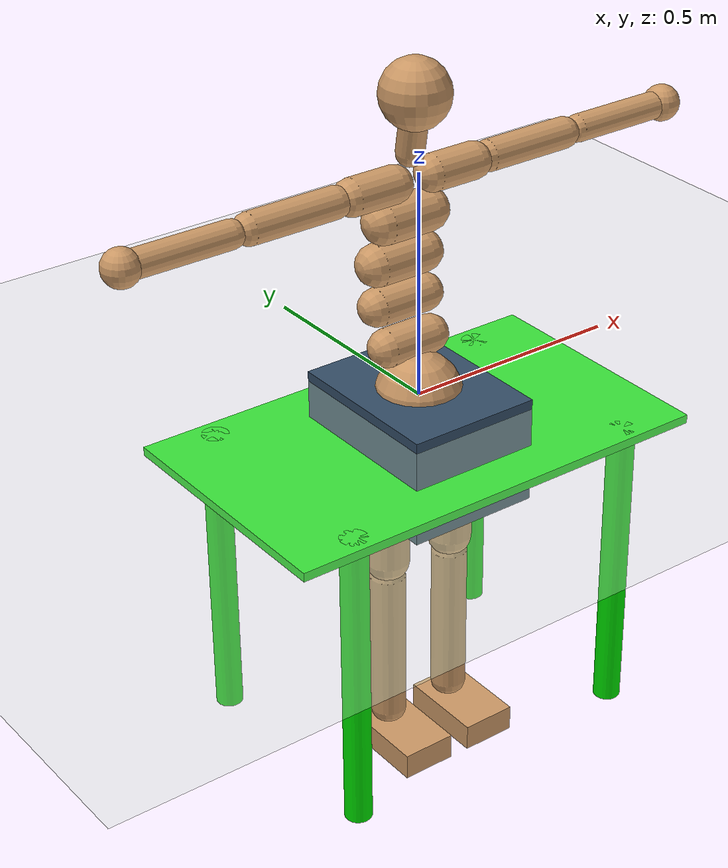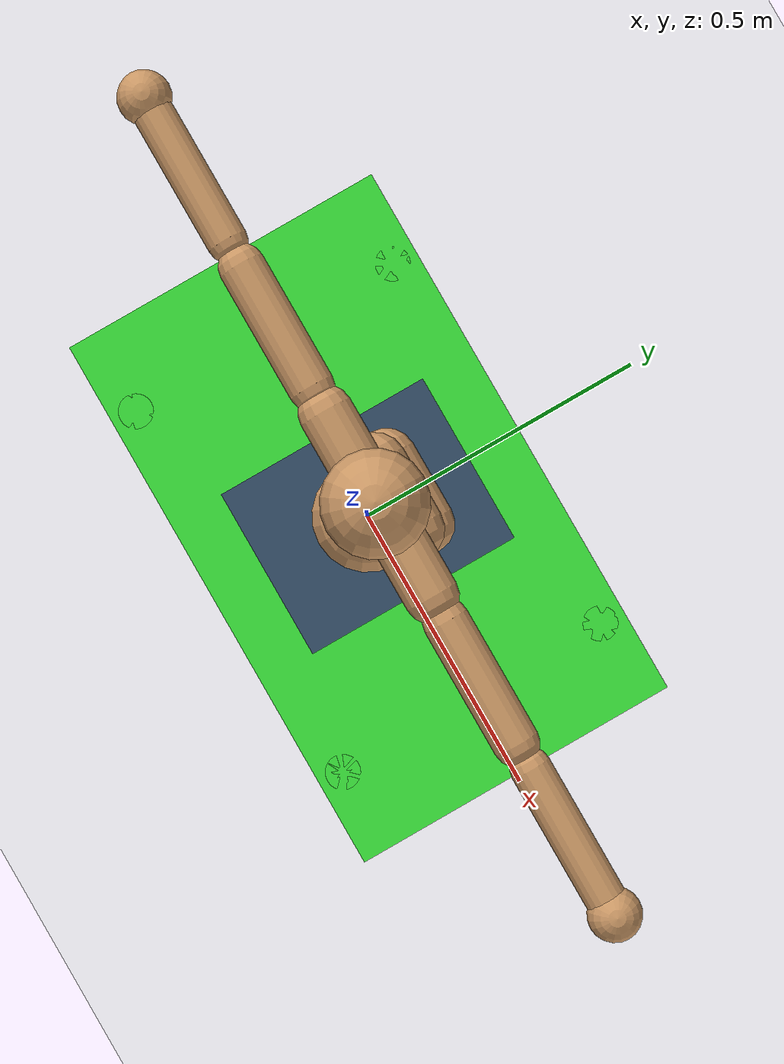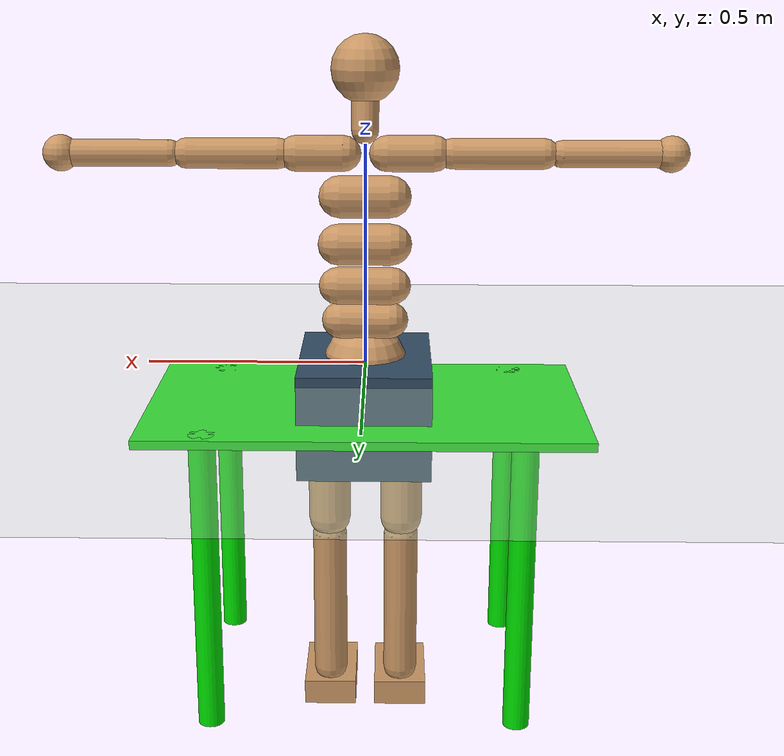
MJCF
<mujoco model="humanoid">
  <compiler angle="degree" inertiafromgeom="true" coordinate="global"/>
  <include file="./common/materials.xml"/>
  <visual>
    <headlight ambient=".4 .4 .4" diffuse=".8 .8 .8" specular="0.1 0.1 0.1"/>
    <map znear=".01"/>
    <quality shadowsize="2048"/>
  </visual>
  <default>
    <joint damping="0.0" armature="0.01" stiffness="0.0" limited="true"/>
    <geom conaffinity="7" condim="1" contype="7" margin="0.001" material="self" rgba="0.8 0.6 .4 1"/>
  </default>
  <statistic extent="3" center="0 0 1"/>
  <option timestep="0.00222222222"/>
  <asset>
    <texture type="skybox" file="./common/sky1.png" gridsize="3 4" gridlayout=".U..LFRB.D.." width="8192" height="8192"/>
    <texture builtin="flat" height="1278" mark="cross" markrgb="1 1 1" name="texgeom" random="0.01" rgb1=".8 .6 .4" rgb2=".8 .6 .4" type="cube" width="127"/>
  </asset>
  <worldbody>
    <light cutoff="100" diffuse="1 1 1" dir="-0 0 -1.3" directional="true" exponent="1" pos="0 0 1.3" specular=".1 .1 .1"/>
    <geom condim="3" friction="1. .1 .1" material="grid" name="floor" pos="0 0 0" rgba=".8 .9 .8 1" size="100 100 .2" type="plane"/>
    <body name="box" pos="0 0 0">
      <joint limited="false" name="box" type="free"/>
      <geom contype="3" conaffinity="3" type="box" size="0.15 0.19 0.120" pos="0 0 -0.1" euler="0 0 0" rgba="0.2 0.3 0.4 1" condim="3" mass="1.0"/>
    </body>
    <body name="table" pos="0 0 0">
      <joint limited="false" name="table" type="free"/>
      <geom contype="3" conaffinity="3" type="box" size="0.499 0.294 0.01" pos="0.0 0.0 -0.1" euler="0 0 0" rgba="0 0.9 0 1"    condim="3" mass="1.0"/>
      <geom contype="3" conaffinity="3" type="cylinder" size="0.03 0.35" pos="-0.35 -0.25 -0.44" euler="0 0 0" rgba="0 0.9 0 1" condim="3" mass="500.0"/>
      <geom contype="3" conaffinity="3" type="cylinder" size="0.03 0.35" pos="-0.35  0.25 -0.44" euler="0 0 0" rgba="0 0.9 0 1" condim="3" mass="500.0"/>
      <geom contype="3" conaffinity="3" type="cylinder" size="0.03 0.35" pos=" 0.35 -0.25 -0.44" euler="0 0 0" rgba="0 0.9 0 1" condim="3" mass="500.0"/>
      <geom contype="3" conaffinity="3" type="cylinder" size="0.03 0.35" pos=" 0.35  0.25 -0.44" euler="0 0 0" rgba="0 0.9 0 1" condim="3" mass="500.0"/>
    </body>
    <body name="Hips" user="0.0000 0.0146 0.0054" pos="0.0000 0.0146 0.0054">
      <joint armature="0" damping="0" limited="false" name="Hips" pos="0.0000 0.0000 0.0000" stiffness="0" type="free"/>
      <geom pos="0.0000 0.0000 0.0000" size="0.0950" type="sphere"/>
      <body name="Spine" user="0.0000 0.0591 0.1523" pos="0.0000 0.0146 0.0054">
        <geom fromto="-0.0550 0.0369 0.1109 0.0550 0.0369 0.1109" size="0.0420" type="capsule"/>
        <joint axis="1.0000 0.0000 0.0000" name="Spine_x" pos="0.0000 0.0439 0.0658" range="-30.0000 45.0000" type="hinge"/>
        <joint axis="0.0000 1.0000 0.0000" name="Spine_y" pos="0.0000 0.0439 0.0658" range="-30.0000 30.0000" type="hinge"/>
        <joint axis="0.0000 0.0000 1.0000" name="Spine_z" pos="0.0000 0.0439 0.0658" range="-30.0000 30.0000" type="hinge"/>
        <body name="Spine1" user="0.0000 0.0668 0.2397" pos="0.0000 0.0591 0.1523">
          <geom fromto="-0.0600 0.0630 0.1960 0.0600 0.0630 0.1960" size="0.0420" type="capsule"/>
          <joint axis="1.0000 0.0000 0.0000" name="Spine1_x" pos="0.0000 0.0591 0.1523" range="-30.0000 45.0000" type="hinge"/>
          <joint axis="0.0000 1.0000 0.0000" name="Spine1_y" pos="0.0000 0.0591 0.1523" range="-30.0000 30.0000" type="hinge"/>
          <joint axis="0.0000 0.0000 1.0000" name="Spine1_z" pos="0.0000 0.0591 0.1523" range="-30.0000 30.0000" type="hinge"/>
          <body name="Spine2" user="0.0000 0.0668 0.3275" pos="0.0000 0.0668 0.2397">
            <geom fromto="-0.0575 0.0668 0.2896 0.0575 0.0668 0.2896" size="0.0460" type="capsule"/>
            <joint axis="1.0000 0.0000 0.0000" name="Spine2_x" pos="0.0000 0.0668 0.2397" range="-30.0000 45.0000" type="hinge"/>
            <joint axis="0.0000 1.0000 0.0000" name="Spine2_y" pos="0.0000 0.0668 0.2397" range="-30.0000 30.0000" type="hinge"/>
            <joint axis="0.0000 0.0000 1.0000" name="Spine2_z" pos="0.0000 0.0668 0.2397" range="-30.0000 30.0000" type="hinge"/>
            <body name="Spine3" user="0.0000 0.0240 0.5074" pos="0.0000 0.0668 0.3275">
              <geom fromto="-0.0550 0.0454 0.3914 0.0550 0.0454 0.3914" size="0.0470" type="capsule"/>
              <joint axis="1.0000 0.0000 0.0000" name="Spine3_x" pos="0.0000 0.0668 0.3275" range="-30.0000 45.0000" type="hinge"/>
              <joint axis="0.0000 1.0000 0.0000" name="Spine3_y" pos="0.0000 0.0668 0.3275" range="-30.0000 30.0000" type="hinge"/>
              <joint axis="0.0000 0.0000 1.0000" name="Spine3_z" pos="0.0000 0.0668 0.3275" range="-30.0000 30.0000" type="hinge"/>
              <body name="Neck" user="0.0000 0.0129 0.6768" pos="0.0000 0.0240 0.5074">
                <joint axis="1.0000 0.0000 0.0000" name="Neck_x" pos="0.0000 0.0339 0.5579" range="-30.0000 45.0000" type="hinge"/>
                <joint axis="0.0000 1.0000 0.0000" name="Neck_y" pos="0.0000 0.0339 0.5579" range="-30.0000 30.0000" type="hinge"/>
                <joint axis="0.0000 0.0000 1.0000" name="Neck_z" pos="0.0000 0.0339 0.5579" range="-30.0000 30.0000" type="hinge"/>
                <geom fromto="0.0000 0.0304 0.5336 0.0000 0.0164 0.6131" size="0.0300" type="capsule"/>
                <body name="Head" user="0.0000 0.0129 0.8188" pos="0.0000 0.0129 0.6768">
                  <geom pos="0.0000 0.0129 0.6628" size="0.0750" type="sphere"/>
                  <joint axis="1.0000 0.0000 0.0000" name="Head_x" pos="0.0000 0.0129 0.6768" range="-30.0000 45.0000" type="hinge"/>
                  <joint axis="0.0000 1.0000 0.0000" name="Head_y" pos="0.0000 0.0129 0.6768" range="-30.0000 30.0000" type="hinge"/>
                  <joint axis="0.0000 0.0000 1.0000" name="Head_z" pos="0.0000 0.0129 0.6768" range="-30.0000 30.0000" type="hinge"/>
                </body>
              </body>
              <body name="RightShoulder" user="-0.1708 0.0191 0.4821" pos="0.0000 0.0240 0.5074">
                <joint axis="1.0000 0.0000 0.0000" name="RightShoulder_x" pos="-0.0286 0.0191 0.4821" range="-20.0000 20.0000" type="hinge"/>
                <joint axis="0.0000 1.0000 0.0000" name="RightShoulder_y" pos="-0.0286 0.0191 0.4821" range="-20.0000 20.0000" type="hinge"/>
                <joint axis="0.0000 0.0000 1.0000" name="RightShoulder_z" pos="-0.0286 0.0191 0.4821" range="-20.0000 20.0000" type="hinge"/>
                <geom fromto="-0.0486 0.0191 0.4821 -0.1508 0.0191 0.4821" size="0.0400" type="capsule"/>
                <body name="RightArm" user="-0.4103 0.0191 0.4821" pos="-0.1708 0.0191 0.4821">
                  <joint axis="1.0000 0.0000 0.0000" name="RightArm_x" pos="-0.1708 0.0191 0.4821" range="-90.0000 90.0000" type="hinge"/>
                  <joint axis="0.0000 1.0000 0.0000" name="RightArm_y" pos="-0.1708 0.0191 0.4821" range="-90.0000 90.0000" type="hinge"/>
                  <joint axis="0.0000 0.0000 1.0000" name="RightArm_z" pos="-0.1708 0.0191 0.4821" range="-60.0000 90.0000" type="hinge"/>
                  <geom fromto="-0.1908 0.0191 0.4821 -0.3903 0.0191 0.4821" size="0.0340" type="capsule"/>
                  <body name="RightForeArm" user="-0.6643 0.0191 0.4821" pos="-0.4103 0.0191 0.4821">
                    <joint axis="0.0000 0.0000 1.0000" name="RightForeArm_z" pos="-0.4103 0.0191 0.4821" range="-10.0000 170.0000" type="hinge"/>
                    <geom fromto="-0.4303 0.0191 0.4821 -0.6443 0.0191 0.4821" size="0.0300" type="capsule"/>
                    <body name="RightHand" user="-0.7282 0.0191 0.4821" pos="-0.6643 0.0191 0.4821">
                      <geom contype="4" conaffinity="4" pos="-0.6683 0.0191 0.4821" size="0.0400" type="sphere"/>
                      <joint axis="1.0000 0.0000 0.0000" name="RightHand_x" pos="-0.6643 0.0191 0.4821" range="-90.0000 90.0000" type="hinge"/>
                      <joint axis="0.0000 1.0000 0.0000" name="RightHand_y" pos="-0.6643 0.0191 0.4821" range="-90.0000 90.0000" type="hinge"/>
                      <joint axis="0.0000 0.0000 1.0000" name="RightHand_z" pos="-0.6643 0.0191 0.4821" range="-90.0000 90.0000" type="hinge"/>
                    </body>
                  </body>
                </body>
              </body>
              <body name="LeftShoulder" user="0.1708 0.0191 0.4821" pos="-0.0000 0.0240 0.5074">
                <joint axis="1.0000 0.0000 0.0000" name="LeftShoulder_x" pos="0.0286 0.0191 0.4821" range="-20.0000 20.0000" type="hinge"/>
                <joint axis="0.0000 1.0000 0.0000" name="LeftShoulder_y" pos="0.0286 0.0191 0.4821" range="-20.0000 20.0000" type="hinge"/>
                <joint axis="0.0000 0.0000 1.0000" name="LeftShoulder_z" pos="0.0286 0.0191 0.4821" range="-20.0000 20.0000" type="hinge"/>
                <geom fromto="0.0486 0.0191 0.4821 0.1508 0.0191 0.4821" size="0.0400" type="capsule"/>
                <body name="LeftArm" user="0.4103 0.0191 0.4821" pos="0.1708 0.0191 0.4821">
                  <joint axis="1.0000 0.0000 0.0000" name="LeftArm_x" pos="0.1708 0.0191 0.4821" range="-90.0000 90.0000" type="hinge"/>
                  <joint axis="0.0000 1.0000 0.0000" name="LeftArm_y" pos="0.1708 0.0191 0.4821" range="-90.0000 90.0000" type="hinge"/>
                  <joint axis="0.0000 0.0000 1.0000" name="LeftArm_z" pos="0.1708 0.0191 0.4821" range="-90.0000 60.0000" type="hinge"/>
                  <geom fromto="0.1908 0.0191 0.4821 0.3903 0.0191 0.4821" size="0.0340" type="capsule"/>
                  <body name="LeftForeArm" user="0.6643 0.0191 0.4821" pos="0.4103 0.0191 0.4821">
                    <joint axis="0.0000 0.0000 1.0000" name="LeftForeArm_z" pos="0.4103 0.0191 0.4821" range="-170.0000 10.0000" type="hinge"/>
                    <geom fromto="0.4303 0.0191 0.4821 0.6443 0.0191 0.4821" size="0.0300" type="capsule"/>
                    <body name="LeftHand" user="0.7282 0.0191 0.4821" pos="0.6643 0.0191 0.4821">
                      <geom contype="4" conaffinity="4" pos="0.6683 0.0191 0.4821" size="0.0400" type="sphere"/>
                      <joint axis="1.0000 0.0000 0.0000" name="LeftHand_x" pos="0.6643 0.0191 0.4821" range="-90.0000 90.0000" type="hinge"/>
                      <joint axis="0.0000 1.0000 0.0000" name="LeftHand_y" pos="0.6643 0.0191 0.4821" range="-90.0000 90.0000" type="hinge"/>
                      <joint axis="0.0000 0.0000 1.0000" name="LeftHand_z" pos="0.6643 0.0191 0.4821" range="-90.0000 90.0000" type="hinge"/>
                    </body>
                  </body>
                </body>
              </body>
            </body>
          </body>
        </body>
      </body>
      <body name="RightUpLeg" user="-0.0849 0.0000 -0.4027" pos="-0.0849 0.0000 -0.0248">
        <joint axis="1.0000 0.0000 0.0000" name="RightUpLeg_x" pos="-0.0849 0.0000 -0.0248" range="-170.0000 20.0000" type="hinge"/>
        <joint axis="0.0000 1.0000 0.0000" name="RightUpLeg_y" pos="-0.0849 0.0000 -0.0248" range="-40.0000 90.0000" type="hinge"/>
        <joint axis="0.0000 0.0000 1.0000" name="RightUpLeg_z" pos="-0.0849 0.0000 -0.0248" range="-70.0000 70.0000" type="hinge"/>
        <geom fromto="-0.0849 0.0000 -0.0448 -0.0849 0.0000 -0.3827" size="0.0490" type="capsule"/>
        <body name="RightLeg" user="-0.0849 0.0000 -0.7988" pos="-0.0849 0.0000 -0.4027">
          <joint axis="1.0000 0.0000 0.0000" name="RightLeg_x" pos="-0.0849 0.0000 -0.4027" range="0.0000 170.0000" type="hinge"/>
          <geom contype="1" conaffinity="1" fromto="-0.0849 0.0000 -0.4227 -0.0849 0.0000 -0.7788" size="0.0400" type="capsule"/>
          <body name="RightFoot" user="-0.0849 -0.1308 -0.8464" pos="-0.0849 0.0000 -0.7988">
            <geom contype="1" conaffinity="1" pos="-0.0849 -0.0514 -0.8306" size="0.0620 0.1000 0.0300" quat="1.0000 -0.0000 -0.0000 -0.0000" type="box"/>
            <joint axis="1.0000 0.0000 0.0000" name="RightFoot_x" pos="-0.0849 0.0000 -0.7988" range="-90.0000 90.0000" type="hinge"/>
            <joint axis="0.0000 1.0000 0.0000" name="RightFoot_y" pos="-0.0849 0.0000 -0.7988" range="-60.0000 60.0000" type="hinge"/>
            <joint axis="0.0000 0.0000 1.0000" name="RightFoot_z" pos="-0.0849 0.0000 -0.7988" range="-90.0000 90.0000" type="hinge"/>
          </body>
        </body>
      </body>
      <body name="LeftUpLeg" user="0.0849 0.0000 -0.4027" pos="0.0849 0.0000 -0.0248">
        <joint axis="1.0000 0.0000 0.0000" name="LeftUpLeg_x" pos="0.0849 0.0000 -0.0248" range="-170.0000 20.0000" type="hinge"/>
        <joint axis="0.0000 1.0000 0.0000" name="LeftUpLeg_y" pos="0.0849 0.0000 -0.0248" range="-90.0000 40.0000" type="hinge"/>
        <joint axis="0.0000 0.0000 1.0000" name="LeftUpLeg_z" pos="0.0849 0.0000 -0.0248" range="-70.0000 70.0000" type="hinge"/>
        <geom fromto="0.0849 0.0000 -0.0448 0.0849 0.0000 -0.3827" size="0.0490" type="capsule"/>
        <body name="LeftLeg" user="0.0849 0.0000 -0.7988" pos="0.0849 0.0000 -0.4027">
          <joint axis="1.0000 0.0000 0.0000" name="LeftLeg_x" pos="0.0849 0.0000 -0.4027" range="0.0000 170.0000" type="hinge"/>
          <geom contype="2" conaffinity="2" fromto="0.0849 0.0000 -0.4227 0.0849 0.0000 -0.7788" size="0.0400" type="capsule"/>
          <body name="LeftFoot" user="0.0849 -0.1308 -0.8464" pos="0.0849 0.0000 -0.7988">
            <geom contype="2" conaffinity="2" pos="0.0849 -0.0514 -0.8306" size="0.0620 0.1000 0.0300" quat="1.0000 -0.0000 -0.0000 0.0000" type="box"/>
            <joint axis="1.0000 0.0000 0.0000" name="LeftFoot_x" pos="0.0849 0.0000 -0.7988" range="-90.0000 90.0000" type="hinge"/>
            <joint axis="0.0000 1.0000 0.0000" name="LeftFoot_y" pos="0.0849 0.0000 -0.7988" range="-60.0000 60.0000" type="hinge"/>
            <joint axis="0.0000 0.0000 1.0000" name="LeftFoot_z" pos="0.0849 0.0000 -0.7988" range="-90.0000 90.0000" type="hinge"/>
          </body>
        </body>
      </body>
    </body>
  </worldbody>
  <actuator>
    <motor gear="1" joint="Spine_x" name="Spine_x"/>
    <motor gear="1" joint="Spine_y" name="Spine_y"/>
    <motor gear="1" joint="Spine_z" name="Spine_z"/>
    <motor gear="1" joint="Spine1_x" name="Spine1_x"/>
    <motor gear="1" joint="Spine1_y" name="Spine1_y"/>
    <motor gear="1" joint="Spine1_z" name="Spine1_z"/>
    <motor gear="1" joint="Spine2_x" name="Spine2_x"/>
    <motor gear="1" joint="Spine2_y" name="Spine2_y"/>
    <motor gear="1" joint="Spine2_z" name="Spine2_z"/>
    <motor gear="1" joint="Spine3_x" name="Spine3_x"/>
    <motor gear="1" joint="Spine3_y" name="Spine3_y"/>
    <motor gear="1" joint="Spine3_z" name="Spine3_z"/>
    <motor gear="1" joint="Neck_x" name="Neck_x"/>
    <motor gear="1" joint="Neck_y" name="Neck_y"/>
    <motor gear="1" joint="Neck_z" name="Neck_z"/>
    <motor gear="1" joint="Head_x" name="Head_x"/>
    <motor gear="1" joint="Head_y" name="Head_y"/>
    <motor gear="1" joint="Head_z" name="Head_z"/>
    <motor gear="1" joint="RightShoulder_x" name="RightShoulder_x"/>
    <motor gear="1" joint="RightShoulder_y" name="RightShoulder_y"/>
    <motor gear="1" joint="RightShoulder_z" name="RightShoulder_z"/>
    <motor gear="1" joint="RightArm_x" name="RightArm_x"/>
    <motor gear="1" joint="RightArm_y" name="RightArm_y"/>
    <motor gear="1" joint="RightArm_z" name="RightArm_z"/>
    <motor gear="1" joint="RightForeArm_z" name="RightForeArm_z"/>
    <motor gear="1" joint="RightHand_x" name="RightHand_x"/>
    <motor gear="1" joint="RightHand_y" name="RightHand_y"/>
    <motor gear="1" joint="RightHand_z" name="RightHand_z"/>
    <motor gear="1" joint="LeftShoulder_x" name="LeftShoulder_x"/>
    <motor gear="1" joint="LeftShoulder_y" name="LeftShoulder_y"/>
    <motor gear="1" joint="LeftShoulder_z" name="LeftShoulder_z"/>
    <motor gear="1" joint="LeftArm_x" name="LeftArm_x"/>
    <motor gear="1" joint="LeftArm_y" name="LeftArm_y"/>
    <motor gear="1" joint="LeftArm_z" name="LeftArm_z"/>
    <motor gear="1" joint="LeftForeArm_z" name="LeftForeArm_z"/>
    <motor gear="1" joint="LeftHand_x" name="LeftHand_x"/>
    <motor gear="1" joint="LeftHand_y" name="LeftHand_y"/>
    <motor gear="1" joint="LeftHand_z" name="LeftHand_z"/>
    <motor gear="1" joint="RightUpLeg_x" name="RightUpLeg_x"/>
    <motor gear="1" joint="RightUpLeg_y" name="RightUpLeg_y"/>
    <motor gear="1" joint="RightUpLeg_z" name="RightUpLeg_z"/>
    <motor gear="1" joint="RightLeg_x" name="RightLeg_x"/>
    <motor gear="1" joint="RightFoot_x" name="RightFoot_x"/>
    <motor gear="1" joint="RightFoot_y" name="RightFoot_y"/>
    <motor gear="1" joint="RightFoot_z" name="RightFoot_z"/>
    <motor gear="1" joint="LeftUpLeg_x" name="LeftUpLeg_x"/>
    <motor gear="1" joint="LeftUpLeg_y" name="LeftUpLeg_y"/>
    <motor gear="1" joint="LeftUpLeg_z" name="LeftUpLeg_z"/>
    <motor gear="1" joint="LeftLeg_x" name="LeftLeg_x"/>
    <motor gear="1" joint="LeftFoot_x" name="LeftFoot_x"/>
    <motor gear="1" joint="LeftFoot_y" name="LeftFoot_y"/>
    <motor gear="1" joint="LeftFoot_z" name="LeftFoot_z"/>
  </actuator>
</mujoco>

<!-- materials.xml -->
<!--
Common textures, colors and materials to be used throughout this suite. Some
materials such as xxx_highlight are activated on occurence of certain events,
for example receiving a positive reward.
-->
<mujoco>
  <asset>
    <texture name="grid" type="2d" builtin="checker" rgb1=".1 .1 .1" rgb2=".3 .3 .3" width="300" height="300" mark="edge" markrgb=".1 .1 .1"/>
    <texture builtin="checker" height="100" name="texplane" rgb1=".1 .1 .1" rgb2=".8 .8 .8" type="2d" width="100"/>
    <texture name="grass" file="./common/grass.png" type="2d"/>
    <material name="grid" texture="grid" texrepeat="1 1" texuniform="true" reflectance=".2"/>
    <material name="MatPlane" reflectance="0.5" shininess="1" specular="1" texrepeat="60 60" texture="texplane"/>
    <material name="GrassPlane" reflectance="0.0" shininess="1" specular="1" texrepeat="400 400" texture="grass"/>
    <material name="self" rgba=".7 .5 .3 1"/>
    <material name="self_default" rgba=".7 .5 .3 1"/>
    <material name="self_highlight" rgba="0 .5 .3 1"/>
    <material name="effector" rgba=".7 .4 .2 1"/>
    <material name="effector_default" rgba=".7 .4 .2 1"/>
    <material name="effector_highlight" rgba="0 .5 .3 1"/>
    <material name="decoration" rgba=".3 .5 .7 1"/>
    <material name="eye" rgba="0 .2 1 1"/>
    <material name="target" rgba=".6 .3 .3 1"/>
    <material name="target_default" rgba=".6 .3 .3 1"/>
    <material name="target_highlight" rgba=".6 .3 .3 .4"/>
    <material name="expert" rgba=".6 .3 .3 .4"/>
  </asset>
</mujoco>
